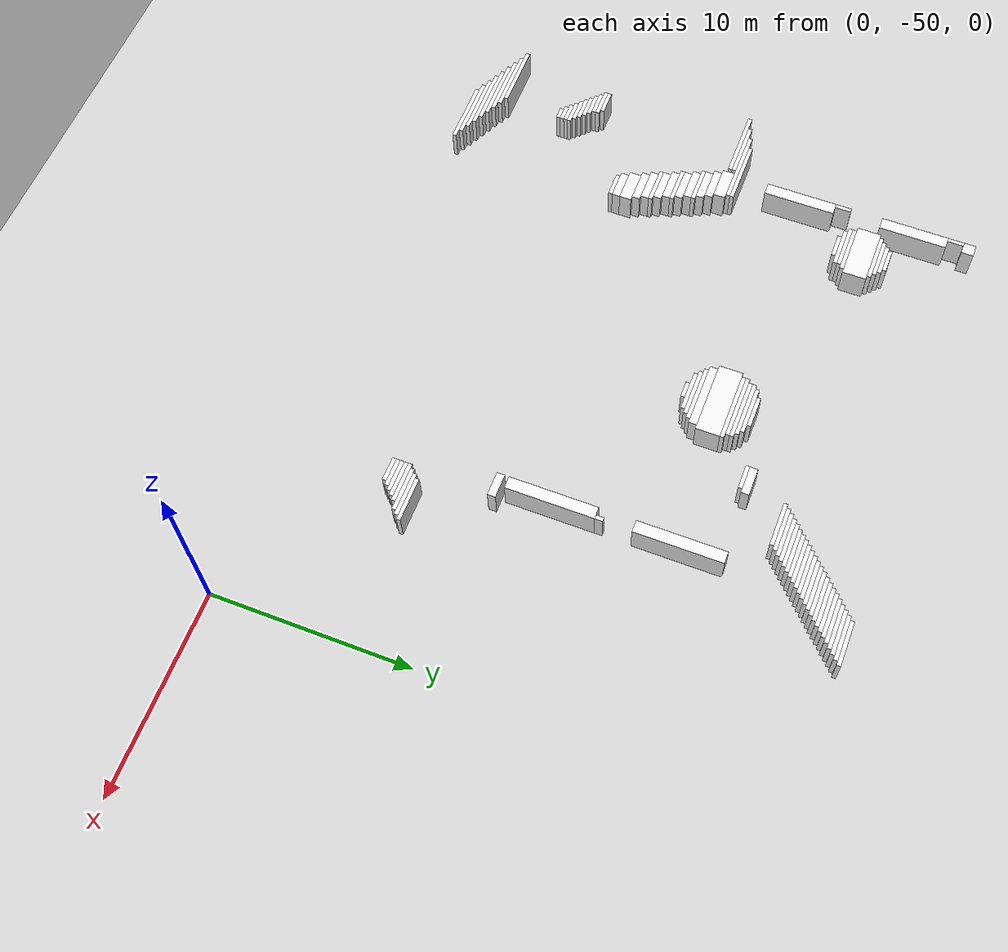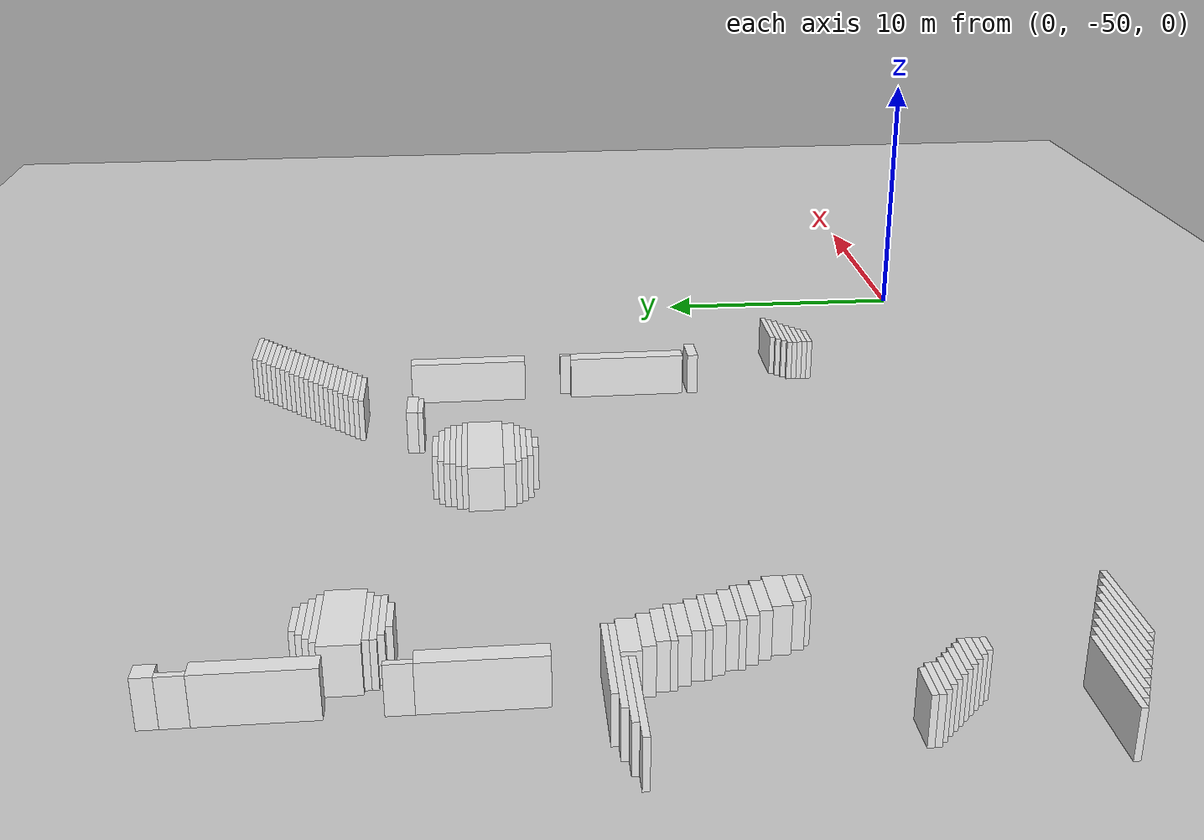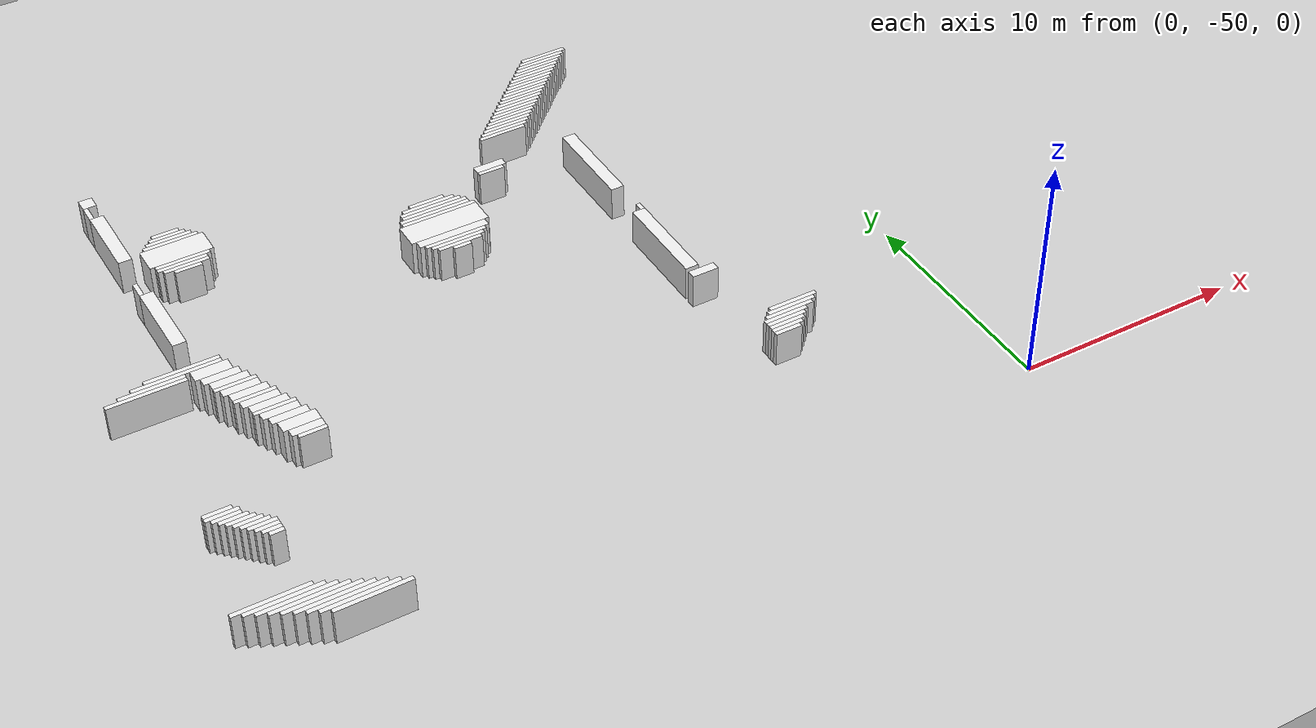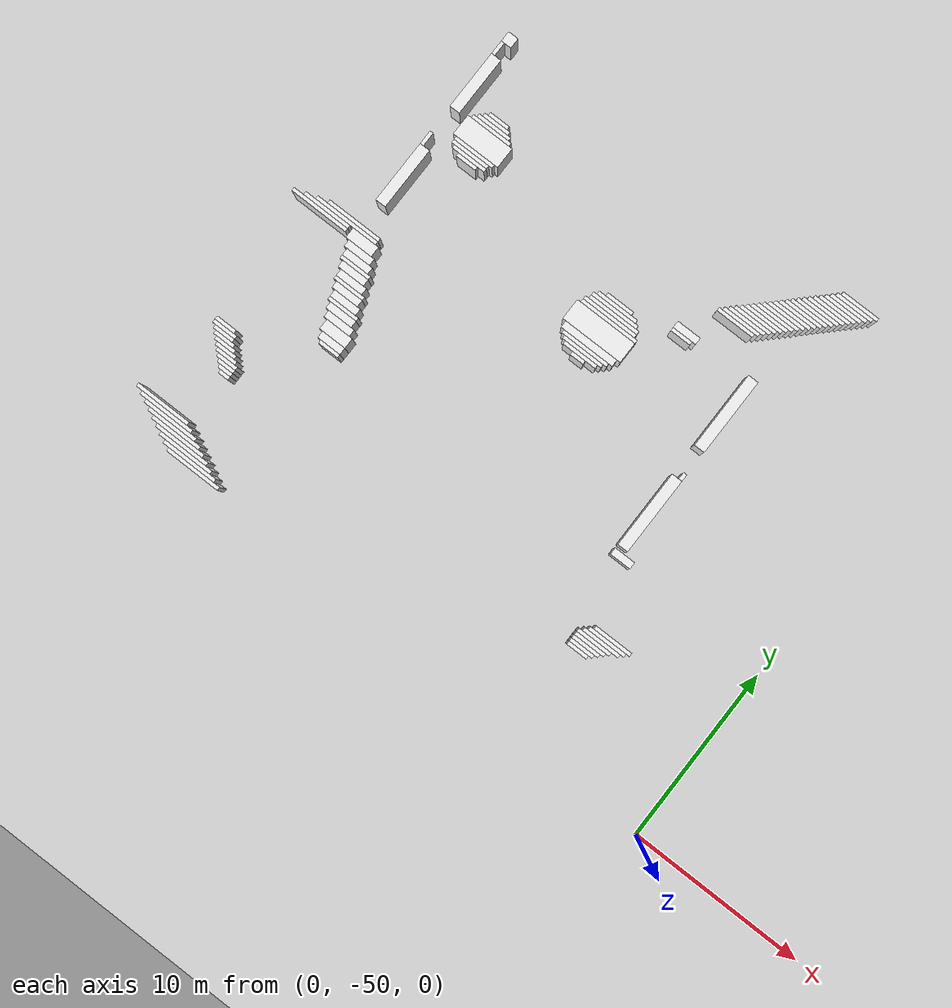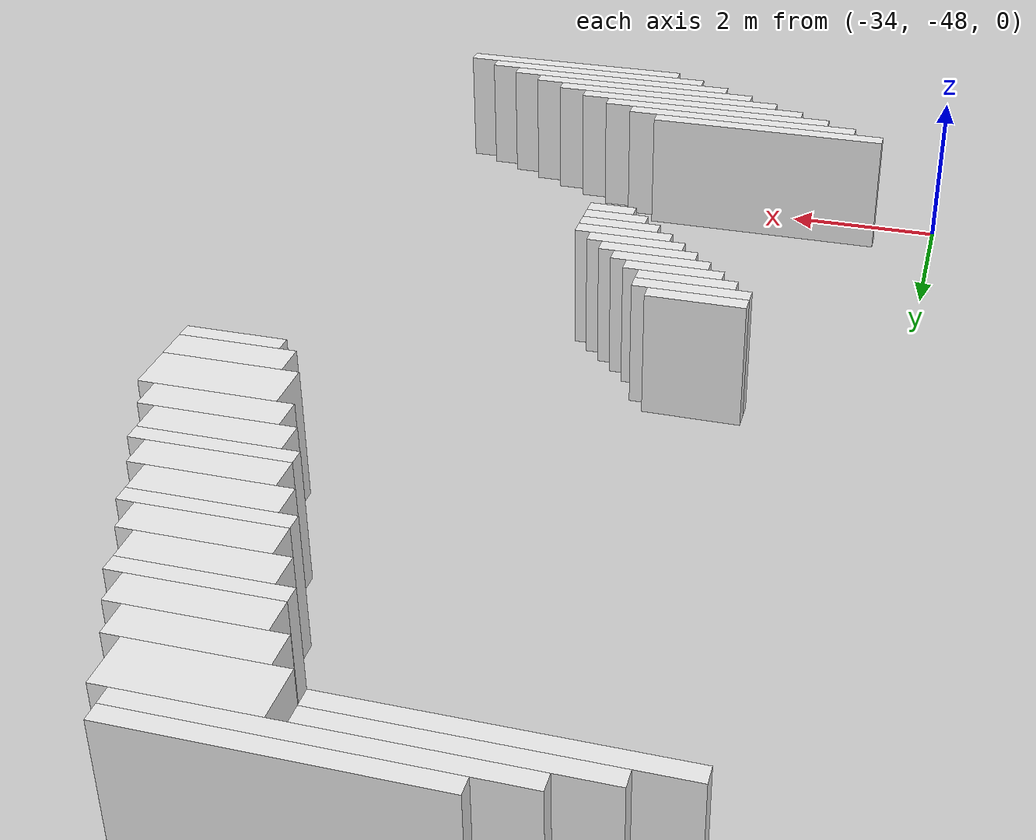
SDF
<sdf version="1.7">
 <world name="default">
  <model name="ground_plane">
   <static>1</static>
   <link name="link">
    <collision name="collision">
     <geometry><plane><normal>0 0 1</normal><size>120 120</size></plane></geometry>
    </collision>
    <visual name="visual">
     <geometry><plane><normal>0 0 1</normal><size>120 120</size></plane></geometry>
     <material>
      <script><uri>file://media/materials/scripts/gazebo.material</uri><name>Gazebo/Grey</name></script>
     </material>
    </visual>
   </link>
  </model>
  <model name="random_complex_03_model">
   <static>1</static>
   <link name="obs_2393">
    <pose>-7.3000 -22.5000 0.8000 0 0 0</pose>
    <collision name="obs_2393_col"><geometry><box><size>2.2000 0.2000 1.6000</size></box></geometry></collision>
    <visual name="obs_2393_vis">
     <geometry><box><size>2.2000 0.2000 1.6000</size></box></geometry>
     <material>
      <script><uri>file://media/materials/scripts/gazebo.material</uri><name>Gazebo/White</name></script>
     </material>
    </visual>
   </link>
   <link name="obs_2396">
    <pose>-29.3000 -22.5000 0.8000 0 0 0</pose>
    <collision name="obs_2396_col"><geometry><box><size>0.6000 0.6000 1.6000</size></box></geometry></collision>
    <visual name="obs_2396_vis">
     <geometry><box><size>0.6000 0.6000 1.6000</size></box></geometry>
     <material>
      <script><uri>file://media/materials/scripts/gazebo.material</uri><name>Gazebo/White</name></script>
     </material>
    </visual>
   </link>
   <link name="obs_2399">
    <pose>-7.5000 -22.7000 0.8000 0 0 0</pose>
    <collision name="obs_2399_col"><geometry><box><size>2.2000 0.2000 1.6000</size></box></geometry></collision>
    <visual name="obs_2399_vis">
     <geometry><box><size>2.2000 0.2000 1.6000</size></box></geometry>
     <material>
      <script><uri>file://media/materials/scripts/gazebo.material</uri><name>Gazebo/White</name></script>
     </material>
    </visual>
   </link>
   <link name="obs_2402">
    <pose>-7.7000 -22.9000 0.8000 0 0 0</pose>
    <collision name="obs_2402_col"><geometry><box><size>2.2000 0.2000 1.6000</size></box></geometry></collision>
    <visual name="obs_2402_vis">
     <geometry><box><size>2.2000 0.2000 1.6000</size></box></geometry>
     <material>
      <script><uri>file://media/materials/scripts/gazebo.material</uri><name>Gazebo/White</name></script>
     </material>
    </visual>
   </link>
   <link name="obs_2408">
    <pose>-7.9000 -23.1000 0.8000 0 0 0</pose>
    <collision name="obs_2408_col"><geometry><box><size>2.2000 0.2000 1.6000</size></box></geometry></collision>
    <visual name="obs_2408_vis">
     <geometry><box><size>2.2000 0.2000 1.6000</size></box></geometry>
     <material>
      <script><uri>file://media/materials/scripts/gazebo.material</uri><name>Gazebo/White</name></script>
     </material>
    </visual>
   </link>
   <link name="obs_2413">
    <pose>-8.1000 -23.3000 0.8000 0 0 0</pose>
    <collision name="obs_2413_col"><geometry><box><size>2.2000 0.2000 1.6000</size></box></geometry></collision>
    <visual name="obs_2413_vis">
     <geometry><box><size>2.2000 0.2000 1.6000</size></box></geometry>
     <material>
      <script><uri>file://media/materials/scripts/gazebo.material</uri><name>Gazebo/White</name></script>
     </material>
    </visual>
   </link>
   <link name="obs_2416">
    <pose>-29.5000 -23.2000 0.8000 0 0 0</pose>
    <collision name="obs_2416_col"><geometry><box><size>0.2000 0.8000 1.6000</size></box></geometry></collision>
    <visual name="obs_2416_vis">
     <geometry><box><size>0.2000 0.8000 1.6000</size></box></geometry>
     <material>
      <script><uri>file://media/materials/scripts/gazebo.material</uri><name>Gazebo/White</name></script>
     </material>
    </visual>
   </link>
   <link name="obs_2422">
    <pose>-8.3000 -23.5000 0.8000 0 0 0</pose>
    <collision name="obs_2422_col"><geometry><box><size>2.2000 0.2000 1.6000</size></box></geometry></collision>
    <visual name="obs_2422_vis">
     <geometry><box><size>2.2000 0.2000 1.6000</size></box></geometry>
     <material>
      <script><uri>file://media/materials/scripts/gazebo.material</uri><name>Gazebo/White</name></script>
     </material>
    </visual>
   </link>
   <link name="obs_2427">
    <pose>-8.5000 -23.7000 0.8000 0 0 0</pose>
    <collision name="obs_2427_col"><geometry><box><size>2.2000 0.2000 1.6000</size></box></geometry></collision>
    <visual name="obs_2427_vis">
     <geometry><box><size>2.2000 0.2000 1.6000</size></box></geometry>
     <material>
      <script><uri>file://media/materials/scripts/gazebo.material</uri><name>Gazebo/White</name></script>
     </material>
    </visual>
   </link>
   <link name="obs_2435">
    <pose>-8.7000 -23.9000 0.8000 0 0 0</pose>
    <collision name="obs_2435_col"><geometry><box><size>2.2000 0.2000 1.6000</size></box></geometry></collision>
    <visual name="obs_2435_vis">
     <geometry><box><size>2.2000 0.2000 1.6000</size></box></geometry>
     <material>
      <script><uri>file://media/materials/scripts/gazebo.material</uri><name>Gazebo/White</name></script>
     </material>
    </visual>
   </link>
   <link name="obs_2443">
    <pose>-8.9000 -24.1000 0.8000 0 0 0</pose>
    <collision name="obs_2443_col"><geometry><box><size>2.2000 0.2000 1.6000</size></box></geometry></collision>
    <visual name="obs_2443_vis">
     <geometry><box><size>2.2000 0.2000 1.6000</size></box></geometry>
     <material>
      <script><uri>file://media/materials/scripts/gazebo.material</uri><name>Gazebo/White</name></script>
     </material>
    </visual>
   </link>
   <link name="obs_2449">
    <pose>-9.1000 -24.3000 0.8000 0 0 0</pose>
    <collision name="obs_2449_col"><geometry><box><size>2.2000 0.2000 1.6000</size></box></geometry></collision>
    <visual name="obs_2449_vis">
     <geometry><box><size>2.2000 0.2000 1.6000</size></box></geometry>
     <material>
      <script><uri>file://media/materials/scripts/gazebo.material</uri><name>Gazebo/White</name></script>
     </material>
    </visual>
   </link>
   <link name="obs_2458">
    <pose>-9.3000 -24.5000 0.8000 0 0 0</pose>
    <collision name="obs_2458_col"><geometry><box><size>2.2000 0.2000 1.6000</size></box></geometry></collision>
    <visual name="obs_2458_vis">
     <geometry><box><size>2.2000 0.2000 1.6000</size></box></geometry>
     <material>
      <script><uri>file://media/materials/scripts/gazebo.material</uri><name>Gazebo/White</name></script>
     </material>
    </visual>
   </link>
   <link name="obs_2465">
    <pose>-9.5000 -24.7000 0.8000 0 0 0</pose>
    <collision name="obs_2465_col"><geometry><box><size>2.2000 0.2000 1.6000</size></box></geometry></collision>
    <visual name="obs_2465_vis">
     <geometry><box><size>2.2000 0.2000 1.6000</size></box></geometry>
     <material>
      <script><uri>file://media/materials/scripts/gazebo.material</uri><name>Gazebo/White</name></script>
     </material>
    </visual>
   </link>
   <link name="obs_2470">
    <pose>-9.7000 -24.9000 0.8000 0 0 0</pose>
    <collision name="obs_2470_col"><geometry><box><size>2.2000 0.2000 1.6000</size></box></geometry></collision>
    <visual name="obs_2470_vis">
     <geometry><box><size>2.2000 0.2000 1.6000</size></box></geometry>
     <material>
      <script><uri>file://media/materials/scripts/gazebo.material</uri><name>Gazebo/White</name></script>
     </material>
    </visual>
   </link>
   <link name="obs_2477">
    <pose>-9.9000 -25.1000 0.8000 0 0 0</pose>
    <collision name="obs_2477_col"><geometry><box><size>2.2000 0.2000 1.6000</size></box></geometry></collision>
    <visual name="obs_2477_vis">
     <geometry><box><size>2.2000 0.2000 1.6000</size></box></geometry>
     <material>
      <script><uri>file://media/materials/scripts/gazebo.material</uri><name>Gazebo/White</name></script>
     </material>
    </visual>
   </link>
   <link name="obs_2483">
    <pose>-10.1000 -25.3000 0.8000 0 0 0</pose>
    <collision name="obs_2483_col"><geometry><box><size>2.2000 0.2000 1.6000</size></box></geometry></collision>
    <visual name="obs_2483_vis">
     <geometry><box><size>2.2000 0.2000 1.6000</size></box></geometry>
     <material>
      <script><uri>file://media/materials/scripts/gazebo.material</uri><name>Gazebo/White</name></script>
     </material>
    </visual>
   </link>
   <link name="obs_2490">
    <pose>-10.3000 -25.5000 0.8000 0 0 0</pose>
    <collision name="obs_2490_col"><geometry><box><size>2.2000 0.2000 1.6000</size></box></geometry></collision>
    <visual name="obs_2490_vis">
     <geometry><box><size>2.2000 0.2000 1.6000</size></box></geometry>
     <material>
      <script><uri>file://media/materials/scripts/gazebo.material</uri><name>Gazebo/White</name></script>
     </material>
    </visual>
   </link>
   <link name="obs_2496">
    <pose>-10.5000 -25.7000 0.8000 0 0 0</pose>
    <collision name="obs_2496_col"><geometry><box><size>2.2000 0.2000 1.6000</size></box></geometry></collision>
    <visual name="obs_2496_vis">
     <geometry><box><size>2.2000 0.2000 1.6000</size></box></geometry>
     <material>
      <script><uri>file://media/materials/scripts/gazebo.material</uri><name>Gazebo/White</name></script>
     </material>
    </visual>
   </link>
   <link name="obs_2504">
    <pose>-10.7000 -25.9000 0.8000 0 0 0</pose>
    <collision name="obs_2504_col"><geometry><box><size>2.2000 0.2000 1.6000</size></box></geometry></collision>
    <visual name="obs_2504_vis">
     <geometry><box><size>2.2000 0.2000 1.6000</size></box></geometry>
     <material>
      <script><uri>file://media/materials/scripts/gazebo.material</uri><name>Gazebo/White</name></script>
     </material>
    </visual>
   </link>
   <link name="obs_2511">
    <pose>-27.2000 -26.1000 0.8000 0 0 0</pose>
    <collision name="obs_2511_col"><geometry><box><size>1.2000 0.2000 1.6000</size></box></geometry></collision>
    <visual name="obs_2511_vis">
     <geometry><box><size>1.2000 0.2000 1.6000</size></box></geometry>
     <material>
      <script><uri>file://media/materials/scripts/gazebo.material</uri><name>Gazebo/White</name></script>
     </material>
    </visual>
   </link>
   <link name="obs_2512">
    <pose>-10.9000 -26.1000 0.8000 0 0 0</pose>
    <collision name="obs_2512_col"><geometry><box><size>2.2000 0.2000 1.6000</size></box></geometry></collision>
    <visual name="obs_2512_vis">
     <geometry><box><size>2.2000 0.2000 1.6000</size></box></geometry>
     <material>
      <script><uri>file://media/materials/scripts/gazebo.material</uri><name>Gazebo/White</name></script>
     </material>
    </visual>
   </link>
   <link name="obs_2520">
    <pose>-27.2000 -26.3000 0.8000 0 0 0</pose>
    <collision name="obs_2520_col"><geometry><box><size>1.6000 0.2000 1.6000</size></box></geometry></collision>
    <visual name="obs_2520_vis">
     <geometry><box><size>1.6000 0.2000 1.6000</size></box></geometry>
     <material>
      <script><uri>file://media/materials/scripts/gazebo.material</uri><name>Gazebo/White</name></script>
     </material>
    </visual>
   </link>
   <link name="obs_2521">
    <pose>-11.1000 -26.3000 0.8000 0 0 0</pose>
    <collision name="obs_2521_col"><geometry><box><size>2.2000 0.2000 1.6000</size></box></geometry></collision>
    <visual name="obs_2521_vis">
     <geometry><box><size>2.2000 0.2000 1.6000</size></box></geometry>
     <material>
      <script><uri>file://media/materials/scripts/gazebo.material</uri><name>Gazebo/White</name></script>
     </material>
    </visual>
   </link>
   <link name="obs_2525">
    <pose>-27.2000 -26.5000 0.8000 0 0 0</pose>
    <collision name="obs_2525_col"><geometry><box><size>2.0000 0.2000 1.6000</size></box></geometry></collision>
    <visual name="obs_2525_vis">
     <geometry><box><size>2.0000 0.2000 1.6000</size></box></geometry>
     <material>
      <script><uri>file://media/materials/scripts/gazebo.material</uri><name>Gazebo/White</name></script>
     </material>
    </visual>
   </link>
   <link name="obs_2526">
    <pose>-11.3000 -26.5000 0.8000 0 0 0</pose>
    <collision name="obs_2526_col"><geometry><box><size>2.2000 0.2000 1.6000</size></box></geometry></collision>
    <visual name="obs_2526_vis">
     <geometry><box><size>2.2000 0.2000 1.6000</size></box></geometry>
     <material>
      <script><uri>file://media/materials/scripts/gazebo.material</uri><name>Gazebo/White</name></script>
     </material>
    </visual>
   </link>
   <link name="obs_2533">
    <pose>-27.2000 -26.7000 0.8000 0 0 0</pose>
    <collision name="obs_2533_col"><geometry><box><size>2.4000 0.2000 1.6000</size></box></geometry></collision>
    <visual name="obs_2533_vis">
     <geometry><box><size>2.4000 0.2000 1.6000</size></box></geometry>
     <material>
      <script><uri>file://media/materials/scripts/gazebo.material</uri><name>Gazebo/White</name></script>
     </material>
    </visual>
   </link>
   <link name="obs_2534">
    <pose>-11.5000 -26.7000 0.8000 0 0 0</pose>
    <collision name="obs_2534_col"><geometry><box><size>2.2000 0.2000 1.6000</size></box></geometry></collision>
    <visual name="obs_2534_vis">
     <geometry><box><size>2.2000 0.2000 1.6000</size></box></geometry>
     <material>
      <script><uri>file://media/materials/scripts/gazebo.material</uri><name>Gazebo/White</name></script>
     </material>
    </visual>
   </link>
   <link name="obs_2538">
    <pose>-29.3000 -25.3000 0.8000 0 0 0</pose>
    <collision name="obs_2538_col"><geometry><box><size>0.6000 3.4000 1.6000</size></box></geometry></collision>
    <visual name="obs_2538_vis">
     <geometry><box><size>0.6000 3.4000 1.6000</size></box></geometry>
     <material>
      <script><uri>file://media/materials/scripts/gazebo.material</uri><name>Gazebo/White</name></script>
     </material>
    </visual>
   </link>
   <link name="obs_2540">
    <pose>-11.7000 -26.9000 0.8000 0 0 0</pose>
    <collision name="obs_2540_col"><geometry><box><size>2.2000 0.2000 1.6000</size></box></geometry></collision>
    <visual name="obs_2540_vis">
     <geometry><box><size>2.2000 0.2000 1.6000</size></box></geometry>
     <material>
      <script><uri>file://media/materials/scripts/gazebo.material</uri><name>Gazebo/White</name></script>
     </material>
    </visual>
   </link>
   <link name="obs_2554">
    <pose>-27.2000 -27.4000 0.8000 0 0 0</pose>
    <collision name="obs_2554_col"><geometry><box><size>2.8000 1.2000 1.6000</size></box></geometry></collision>
    <visual name="obs_2554_vis">
     <geometry><box><size>2.8000 1.2000 1.6000</size></box></geometry>
     <material>
      <script><uri>file://media/materials/scripts/gazebo.material</uri><name>Gazebo/White</name></script>
     </material>
    </visual>
   </link>
   <link name="obs_2557">
    <pose>-27.2000 -28.1000 0.8000 0 0 0</pose>
    <collision name="obs_2557_col"><geometry><box><size>2.4000 0.2000 1.6000</size></box></geometry></collision>
    <visual name="obs_2557_vis">
     <geometry><box><size>2.4000 0.2000 1.6000</size></box></geometry>
     <material>
      <script><uri>file://media/materials/scripts/gazebo.material</uri><name>Gazebo/White</name></script>
     </material>
    </visual>
   </link>
   <link name="obs_2560">
    <pose>-27.3000 -28.3000 0.8000 0 0 0</pose>
    <collision name="obs_2560_col"><geometry><box><size>2.2000 0.2000 1.6000</size></box></geometry></collision>
    <visual name="obs_2560_vis">
     <geometry><box><size>2.2000 0.2000 1.6000</size></box></geometry>
     <material>
      <script><uri>file://media/materials/scripts/gazebo.material</uri><name>Gazebo/White</name></script>
     </material>
    </visual>
   </link>
   <link name="obs_2562">
    <pose>-27.2000 -28.5000 0.8000 0 0 0</pose>
    <collision name="obs_2562_col"><geometry><box><size>2.0000 0.2000 1.6000</size></box></geometry></collision>
    <visual name="obs_2562_vis">
     <geometry><box><size>2.0000 0.2000 1.6000</size></box></geometry>
     <material>
      <script><uri>file://media/materials/scripts/gazebo.material</uri><name>Gazebo/White</name></script>
     </material>
    </visual>
   </link>
   <link name="obs_2565">
    <pose>-27.2000 -28.7000 0.8000 0 0 0</pose>
    <collision name="obs_2565_col"><geometry><box><size>1.2000 0.2000 1.6000</size></box></geometry></collision>
    <visual name="obs_2565_vis">
     <geometry><box><size>1.2000 0.2000 1.6000</size></box></geometry>
     <material>
      <script><uri>file://media/materials/scripts/gazebo.material</uri><name>Gazebo/White</name></script>
     </material>
    </visual>
   </link>
   <link name="obs_2567">
    <pose>-13.3000 -28.8000 0.8000 0 0 0</pose>
    <collision name="obs_2567_col"><geometry><box><size>1.4000 0.4000 1.6000</size></box></geometry></collision>
    <visual name="obs_2567_vis">
     <geometry><box><size>1.4000 0.4000 1.6000</size></box></geometry>
     <material>
      <script><uri>file://media/materials/scripts/gazebo.material</uri><name>Gazebo/White</name></script>
     </material>
    </visual>
   </link>
   <link name="obs_2576">
    <pose>-13.4000 -29.1000 0.8000 0 0 0</pose>
    <collision name="obs_2576_col"><geometry><box><size>1.2000 0.2000 1.6000</size></box></geometry></collision>
    <visual name="obs_2576_vis">
     <geometry><box><size>1.2000 0.2000 1.6000</size></box></geometry>
     <material>
      <script><uri>file://media/materials/scripts/gazebo.material</uri><name>Gazebo/White</name></script>
     </material>
    </visual>
   </link>
   <link name="obs_2577">
    <pose>-29.5000 -29.0000 0.8000 0 0 0</pose>
    <collision name="obs_2577_col"><geometry><box><size>0.2000 0.8000 1.6000</size></box></geometry></collision>
    <visual name="obs_2577_vis">
     <geometry><box><size>0.2000 0.8000 1.6000</size></box></geometry>
     <material>
      <script><uri>file://media/materials/scripts/gazebo.material</uri><name>Gazebo/White</name></script>
     </material>
    </visual>
   </link>
   <link name="obs_2589">
    <pose>-16.8000 -29.7000 0.8000 0 0 0</pose>
    <collision name="obs_2589_col"><geometry><box><size>1.6000 0.2000 1.6000</size></box></geometry></collision>
    <visual name="obs_2589_vis">
     <geometry><box><size>1.6000 0.2000 1.6000</size></box></geometry>
     <material>
      <script><uri>file://media/materials/scripts/gazebo.material</uri><name>Gazebo/White</name></script>
     </material>
    </visual>
   </link>
   <link name="obs_2595">
    <pose>-16.8000 -29.9000 0.8000 0 0 0</pose>
    <collision name="obs_2595_col"><geometry><box><size>2.4000 0.2000 1.6000</size></box></geometry></collision>
    <visual name="obs_2595_vis">
     <geometry><box><size>2.4000 0.2000 1.6000</size></box></geometry>
     <material>
      <script><uri>file://media/materials/scripts/gazebo.material</uri><name>Gazebo/White</name></script>
     </material>
    </visual>
   </link>
   <link name="obs_2600">
    <pose>-16.8000 -30.1000 0.8000 0 0 0</pose>
    <collision name="obs_2600_col"><geometry><box><size>2.8000 0.2000 1.6000</size></box></geometry></collision>
    <visual name="obs_2600_vis">
     <geometry><box><size>2.8000 0.2000 1.6000</size></box></geometry>
     <material>
      <script><uri>file://media/materials/scripts/gazebo.material</uri><name>Gazebo/White</name></script>
     </material>
    </visual>
   </link>
   <link name="obs_2607">
    <pose>-16.7000 -30.3000 0.8000 0 0 0</pose>
    <collision name="obs_2607_col"><geometry><box><size>3.0000 0.2000 1.6000</size></box></geometry></collision>
    <visual name="obs_2607_vis">
     <geometry><box><size>3.0000 0.2000 1.6000</size></box></geometry>
     <material>
      <script><uri>file://media/materials/scripts/gazebo.material</uri><name>Gazebo/White</name></script>
     </material>
    </visual>
   </link>
   <link name="obs_2612">
    <pose>-16.8000 -30.5000 0.8000 0 0 0</pose>
    <collision name="obs_2612_col"><geometry><box><size>3.2000 0.2000 1.6000</size></box></geometry></collision>
    <visual name="obs_2612_vis">
     <geometry><box><size>3.2000 0.2000 1.6000</size></box></geometry>
     <material>
      <script><uri>file://media/materials/scripts/gazebo.material</uri><name>Gazebo/White</name></script>
     </material>
    </visual>
   </link>
   <link name="obs_2617">
    <pose>-16.7000 -30.7000 0.8000 0 0 0</pose>
    <collision name="obs_2617_col"><geometry><box><size>3.4000 0.2000 1.6000</size></box></geometry></collision>
    <visual name="obs_2617_vis">
     <geometry><box><size>3.4000 0.2000 1.6000</size></box></geometry>
     <material>
      <script><uri>file://media/materials/scripts/gazebo.material</uri><name>Gazebo/White</name></script>
     </material>
    </visual>
   </link>
   <link name="obs_2651">
    <pose>-16.8000 -31.4000 0.8000 0 0 0</pose>
    <collision name="obs_2651_col"><geometry><box><size>3.6000 1.2000 1.6000</size></box></geometry></collision>
    <visual name="obs_2651_vis">
     <geometry><box><size>3.6000 1.2000 1.6000</size></box></geometry>
     <material>
      <script><uri>file://media/materials/scripts/gazebo.material</uri><name>Gazebo/White</name></script>
     </material>
    </visual>
   </link>
   <link name="obs_2666">
    <pose>-16.8000 -32.2000 0.8000 0 0 0</pose>
    <collision name="obs_2666_col"><geometry><box><size>3.2000 0.4000 1.6000</size></box></geometry></collision>
    <visual name="obs_2666_vis">
     <geometry><box><size>3.2000 0.4000 1.6000</size></box></geometry>
     <material>
      <script><uri>file://media/materials/scripts/gazebo.material</uri><name>Gazebo/White</name></script>
     </material>
    </visual>
   </link>
   <link name="obs_2677">
    <pose>-16.8000 -32.5000 0.8000 0 0 0</pose>
    <collision name="obs_2677_col"><geometry><box><size>2.8000 0.2000 1.6000</size></box></geometry></collision>
    <visual name="obs_2677_vis">
     <geometry><box><size>2.8000 0.2000 1.6000</size></box></geometry>
     <material>
      <script><uri>file://media/materials/scripts/gazebo.material</uri><name>Gazebo/White</name></script>
     </material>
    </visual>
   </link>
   <link name="obs_2684">
    <pose>-16.8000 -32.7000 0.8000 0 0 0</pose>
    <collision name="obs_2684_col"><geometry><box><size>2.4000 0.2000 1.6000</size></box></geometry></collision>
    <visual name="obs_2684_vis">
     <geometry><box><size>2.4000 0.2000 1.6000</size></box></geometry>
     <material>
      <script><uri>file://media/materials/scripts/gazebo.material</uri><name>Gazebo/White</name></script>
     </material>
    </visual>
   </link>
   <link name="obs_2689">
    <pose>-9.3000 -30.8000 0.8000 0 0 0</pose>
    <collision name="obs_2689_col"><geometry><box><size>0.6000 4.4000 1.6000</size></box></geometry></collision>
    <visual name="obs_2689_vis">
     <geometry><box><size>0.6000 4.4000 1.6000</size></box></geometry>
     <material>
      <script><uri>file://media/materials/scripts/gazebo.material</uri><name>Gazebo/White</name></script>
     </material>
    </visual>
   </link>
   <link name="obs_2690">
    <pose>-29.3000 -31.2000 0.8000 0 0 0</pose>
    <collision name="obs_2690_col"><geometry><box><size>0.6000 3.6000 1.6000</size></box></geometry></collision>
    <visual name="obs_2690_vis">
     <geometry><box><size>0.6000 3.6000 1.6000</size></box></geometry>
     <material>
      <script><uri>file://media/materials/scripts/gazebo.material</uri><name>Gazebo/White</name></script>
     </material>
    </visual>
   </link>
   <link name="obs_2693">
    <pose>-16.8000 -32.9000 0.8000 0 0 0</pose>
    <collision name="obs_2693_col"><geometry><box><size>2.0000 0.2000 1.6000</size></box></geometry></collision>
    <visual name="obs_2693_vis">
     <geometry><box><size>2.0000 0.2000 1.6000</size></box></geometry>
     <material>
      <script><uri>file://media/materials/scripts/gazebo.material</uri><name>Gazebo/White</name></script>
     </material>
    </visual>
   </link>
   <link name="obs_2701">
    <pose>-16.8000 -33.1000 0.8000 0 0 0</pose>
    <collision name="obs_2701_col"><geometry><box><size>0.8000 0.2000 1.6000</size></box></geometry></collision>
    <visual name="obs_2701_vis">
     <geometry><box><size>0.8000 0.2000 1.6000</size></box></geometry>
     <material>
      <script><uri>file://media/materials/scripts/gazebo.material</uri><name>Gazebo/White</name></script>
     </material>
    </visual>
   </link>
   <link name="obs_2749">
    <pose>-29.8000 -34.5000 0.8000 0 0 0</pose>
    <collision name="obs_2749_col"><geometry><box><size>3.2000 0.2000 1.6000</size></box></geometry></collision>
    <visual name="obs_2749_vis">
     <geometry><box><size>3.2000 0.2000 1.6000</size></box></geometry>
     <material>
      <script><uri>file://media/materials/scripts/gazebo.material</uri><name>Gazebo/White</name></script>
     </material>
    </visual>
   </link>
   <link name="obs_2755">
    <pose>-9.1000 -34.6000 0.8000 0 0 0</pose>
    <collision name="obs_2755_col"><geometry><box><size>0.2000 0.4000 1.6000</size></box></geometry></collision>
    <visual name="obs_2755_vis">
     <geometry><box><size>0.2000 0.4000 1.6000</size></box></geometry>
     <material>
      <script><uri>file://media/materials/scripts/gazebo.material</uri><name>Gazebo/White</name></script>
     </material>
    </visual>
   </link>
   <link name="obs_2758">
    <pose>-30.1000 -34.7000 0.8000 0 0 0</pose>
    <collision name="obs_2758_col"><geometry><box><size>3.8000 0.2000 1.6000</size></box></geometry></collision>
    <visual name="obs_2758_vis">
     <geometry><box><size>3.8000 0.2000 1.6000</size></box></geometry>
     <material>
      <script><uri>file://media/materials/scripts/gazebo.material</uri><name>Gazebo/White</name></script>
     </material>
    </visual>
   </link>
   <link name="obs_2766">
    <pose>-31.2000 -34.9000 0.8000 0 0 0</pose>
    <collision name="obs_2766_col"><geometry><box><size>2.8000 0.2000 1.6000</size></box></geometry></collision>
    <visual name="obs_2766_vis">
     <geometry><box><size>2.8000 0.2000 1.6000</size></box></geometry>
     <material>
      <script><uri>file://media/materials/scripts/gazebo.material</uri><name>Gazebo/White</name></script>
     </material>
    </visual>
   </link>
   <link name="obs_2773">
    <pose>-31.5000 -35.1000 0.8000 0 0 0</pose>
    <collision name="obs_2773_col"><geometry><box><size>3.4000 0.2000 1.6000</size></box></geometry></collision>
    <visual name="obs_2773_vis">
     <geometry><box><size>3.4000 0.2000 1.6000</size></box></geometry>
     <material>
      <script><uri>file://media/materials/scripts/gazebo.material</uri><name>Gazebo/White</name></script>
     </material>
    </visual>
   </link>
   <link name="obs_2778">
    <pose>-28.8000 -35.1000 0.8000 0 0 0</pose>
    <collision name="obs_2778_col"><geometry><box><size>1.6000 0.6000 1.6000</size></box></geometry></collision>
    <visual name="obs_2778_vis">
     <geometry><box><size>1.6000 0.6000 1.6000</size></box></geometry>
     <material>
      <script><uri>file://media/materials/scripts/gazebo.material</uri><name>Gazebo/White</name></script>
     </material>
    </visual>
   </link>
   <link name="obs_2793">
    <pose>-28.6000 -35.6000 0.8000 0 0 0</pose>
    <collision name="obs_2793_col"><geometry><box><size>1.6000 0.4000 1.6000</size></box></geometry></collision>
    <visual name="obs_2793_vis">
     <geometry><box><size>1.6000 0.4000 1.6000</size></box></geometry>
     <material>
      <script><uri>file://media/materials/scripts/gazebo.material</uri><name>Gazebo/White</name></script>
     </material>
    </visual>
   </link>
   <link name="obs_2808">
    <pose>-28.4000 -36.0000 0.8000 0 0 0</pose>
    <collision name="obs_2808_col"><geometry><box><size>1.6000 0.4000 1.6000</size></box></geometry></collision>
    <visual name="obs_2808_vis">
     <geometry><box><size>1.6000 0.4000 1.6000</size></box></geometry>
     <material>
      <script><uri>file://media/materials/scripts/gazebo.material</uri><name>Gazebo/White</name></script>
     </material>
    </visual>
   </link>
   <link name="obs_2821">
    <pose>-28.3000 -36.3000 0.8000 0 0 0</pose>
    <collision name="obs_2821_col"><geometry><box><size>1.8000 0.2000 1.6000</size></box></geometry></collision>
    <visual name="obs_2821_vis">
     <geometry><box><size>1.8000 0.2000 1.6000</size></box></geometry>
     <material>
      <script><uri>file://media/materials/scripts/gazebo.material</uri><name>Gazebo/White</name></script>
     </material>
    </visual>
   </link>
   <link name="obs_2830">
    <pose>-28.2000 -36.6000 0.8000 0 0 0</pose>
    <collision name="obs_2830_col"><geometry><box><size>1.6000 0.4000 1.6000</size></box></geometry></collision>
    <visual name="obs_2830_vis">
     <geometry><box><size>1.6000 0.4000 1.6000</size></box></geometry>
     <material>
      <script><uri>file://media/materials/scripts/gazebo.material</uri><name>Gazebo/White</name></script>
     </material>
    </visual>
   </link>
   <link name="obs_2842">
    <pose>-28.0000 -37.0000 0.8000 0 0 0</pose>
    <collision name="obs_2842_col"><geometry><box><size>1.6000 0.4000 1.6000</size></box></geometry></collision>
    <visual name="obs_2842_vis">
     <geometry><box><size>1.6000 0.4000 1.6000</size></box></geometry>
     <material>
      <script><uri>file://media/materials/scripts/gazebo.material</uri><name>Gazebo/White</name></script>
     </material>
    </visual>
   </link>
   <link name="obs_2851">
    <pose>-27.9000 -37.3000 0.8000 0 0 0</pose>
    <collision name="obs_2851_col"><geometry><box><size>1.8000 0.2000 1.6000</size></box></geometry></collision>
    <visual name="obs_2851_vis">
     <geometry><box><size>1.8000 0.2000 1.6000</size></box></geometry>
     <material>
      <script><uri>file://media/materials/scripts/gazebo.material</uri><name>Gazebo/White</name></script>
     </material>
    </visual>
   </link>
   <link name="obs_2860">
    <pose>-27.8000 -37.6000 0.8000 0 0 0</pose>
    <collision name="obs_2860_col"><geometry><box><size>1.6000 0.4000 1.6000</size></box></geometry></collision>
    <visual name="obs_2860_vis">
     <geometry><box><size>1.6000 0.4000 1.6000</size></box></geometry>
     <material>
      <script><uri>file://media/materials/scripts/gazebo.material</uri><name>Gazebo/White</name></script>
     </material>
    </visual>
   </link>
   <link name="obs_2872">
    <pose>-27.6000 -38.0000 0.8000 0 0 0</pose>
    <collision name="obs_2872_col"><geometry><box><size>1.6000 0.4000 1.6000</size></box></geometry></collision>
    <visual name="obs_2872_vis">
     <geometry><box><size>1.6000 0.4000 1.6000</size></box></geometry>
     <material>
      <script><uri>file://media/materials/scripts/gazebo.material</uri><name>Gazebo/White</name></script>
     </material>
    </visual>
   </link>
   <link name="obs_2880">
    <pose>-27.5000 -38.3000 0.8000 0 0 0</pose>
    <collision name="obs_2880_col"><geometry><box><size>1.8000 0.2000 1.6000</size></box></geometry></collision>
    <visual name="obs_2880_vis">
     <geometry><box><size>1.8000 0.2000 1.6000</size></box></geometry>
     <material>
      <script><uri>file://media/materials/scripts/gazebo.material</uri><name>Gazebo/White</name></script>
     </material>
    </visual>
   </link>
   <link name="obs_2890">
    <pose>-27.4000 -38.6000 0.8000 0 0 0</pose>
    <collision name="obs_2890_col"><geometry><box><size>1.6000 0.4000 1.6000</size></box></geometry></collision>
    <visual name="obs_2890_vis">
     <geometry><box><size>1.6000 0.4000 1.6000</size></box></geometry>
     <material>
      <script><uri>file://media/materials/scripts/gazebo.material</uri><name>Gazebo/White</name></script>
     </material>
    </visual>
   </link>
   <link name="obs_2899">
    <pose>-9.3000 -37.0000 0.8000 0 0 0</pose>
    <collision name="obs_2899_col"><geometry><box><size>0.6000 4.4000 1.6000</size></box></geometry></collision>
    <visual name="obs_2899_vis">
     <geometry><box><size>0.6000 4.4000 1.6000</size></box></geometry>
     <material>
      <script><uri>file://media/materials/scripts/gazebo.material</uri><name>Gazebo/White</name></script>
     </material>
    </visual>
   </link>
   <link name="obs_2900">
    <pose>-27.2000 -39.0000 0.8000 0 0 0</pose>
    <collision name="obs_2900_col"><geometry><box><size>1.6000 0.4000 1.6000</size></box></geometry></collision>
    <visual name="obs_2900_vis">
     <geometry><box><size>1.6000 0.4000 1.6000</size></box></geometry>
     <material>
      <script><uri>file://media/materials/scripts/gazebo.material</uri><name>Gazebo/White</name></script>
     </material>
    </visual>
   </link>
   <link name="obs_2911">
    <pose>-27.0000 -39.5000 0.8000 0 0 0</pose>
    <collision name="obs_2911_col"><geometry><box><size>1.6000 0.6000 1.6000</size></box></geometry></collision>
    <visual name="obs_2911_vis">
     <geometry><box><size>1.6000 0.6000 1.6000</size></box></geometry>
     <material>
      <script><uri>file://media/materials/scripts/gazebo.material</uri><name>Gazebo/White</name></script>
     </material>
    </visual>
   </link>
   <link name="obs_2912">
    <pose>-9.0000 -39.6000 0.8000 0 0 0</pose>
    <collision name="obs_2912_col"><geometry><box><size>1.2000 0.4000 1.6000</size></box></geometry></collision>
    <visual name="obs_2912_vis">
     <geometry><box><size>1.2000 0.4000 1.6000</size></box></geometry>
     <material>
      <script><uri>file://media/materials/scripts/gazebo.material</uri><name>Gazebo/White</name></script>
     </material>
    </visual>
   </link>
   <link name="obs_2925">
    <pose>-26.9000 -40.0000 0.8000 0 0 0</pose>
    <collision name="obs_2925_col"><geometry><box><size>1.4000 0.4000 1.6000</size></box></geometry></collision>
    <visual name="obs_2925_vis">
     <geometry><box><size>1.4000 0.4000 1.6000</size></box></geometry>
     <material>
      <script><uri>file://media/materials/scripts/gazebo.material</uri><name>Gazebo/White</name></script>
     </material>
    </visual>
   </link>
   <link name="obs_2935">
    <pose>-26.8000 -40.3000 0.8000 0 0 0</pose>
    <collision name="obs_2935_col"><geometry><box><size>1.2000 0.2000 1.6000</size></box></geometry></collision>
    <visual name="obs_2935_vis">
     <geometry><box><size>1.2000 0.2000 1.6000</size></box></geometry>
     <material>
      <script><uri>file://media/materials/scripts/gazebo.material</uri><name>Gazebo/White</name></script>
     </material>
    </visual>
   </link>
   <link name="obs_2983">
    <pose>-31.6000 -42.5000 0.8000 0 0 0</pose>
    <collision name="obs_2983_col"><geometry><box><size>1.2000 0.2000 1.6000</size></box></geometry></collision>
    <visual name="obs_2983_vis">
     <geometry><box><size>1.2000 0.2000 1.6000</size></box></geometry>
     <material>
      <script><uri>file://media/materials/scripts/gazebo.material</uri><name>Gazebo/White</name></script>
     </material>
    </visual>
   </link>
   <link name="obs_2988">
    <pose>-31.5000 -42.7000 0.8000 0 0 0</pose>
    <collision name="obs_2988_col"><geometry><box><size>1.4000 0.2000 1.6000</size></box></geometry></collision>
    <visual name="obs_2988_vis">
     <geometry><box><size>1.4000 0.2000 1.6000</size></box></geometry>
     <material>
      <script><uri>file://media/materials/scripts/gazebo.material</uri><name>Gazebo/White</name></script>
     </material>
    </visual>
   </link>
   <link name="obs_2996">
    <pose>-31.4000 -42.9000 0.8000 0 0 0</pose>
    <collision name="obs_2996_col"><geometry><box><size>1.2000 0.2000 1.6000</size></box></geometry></collision>
    <visual name="obs_2996_vis">
     <geometry><box><size>1.2000 0.2000 1.6000</size></box></geometry>
     <material>
      <script><uri>file://media/materials/scripts/gazebo.material</uri><name>Gazebo/White</name></script>
     </material>
    </visual>
   </link>
   <link name="obs_3001">
    <pose>-31.2000 -43.1000 0.8000 0 0 0</pose>
    <collision name="obs_3001_col"><geometry><box><size>1.2000 0.2000 1.6000</size></box></geometry></collision>
    <visual name="obs_3001_vis">
     <geometry><box><size>1.2000 0.2000 1.6000</size></box></geometry>
     <material>
      <script><uri>file://media/materials/scripts/gazebo.material</uri><name>Gazebo/White</name></script>
     </material>
    </visual>
   </link>
   <link name="obs_3002">
    <pose>-6.9000 -43.1000 0.8000 0 0 0</pose>
    <collision name="obs_3002_col"><geometry><box><size>2.2000 0.2000 1.6000</size></box></geometry></collision>
    <visual name="obs_3002_vis">
     <geometry><box><size>2.2000 0.2000 1.6000</size></box></geometry>
     <material>
      <script><uri>file://media/materials/scripts/gazebo.material</uri><name>Gazebo/White</name></script>
     </material>
    </visual>
   </link>
   <link name="obs_3005">
    <pose>-31.0000 -43.3000 0.8000 0 0 0</pose>
    <collision name="obs_3005_col"><geometry><box><size>1.2000 0.2000 1.6000</size></box></geometry></collision>
    <visual name="obs_3005_vis">
     <geometry><box><size>1.2000 0.2000 1.6000</size></box></geometry>
     <material>
      <script><uri>file://media/materials/scripts/gazebo.material</uri><name>Gazebo/White</name></script>
     </material>
    </visual>
   </link>
   <link name="obs_3006">
    <pose>-7.1000 -43.3000 0.8000 0 0 0</pose>
    <collision name="obs_3006_col"><geometry><box><size>2.2000 0.2000 1.6000</size></box></geometry></collision>
    <visual name="obs_3006_vis">
     <geometry><box><size>2.2000 0.2000 1.6000</size></box></geometry>
     <material>
      <script><uri>file://media/materials/scripts/gazebo.material</uri><name>Gazebo/White</name></script>
     </material>
    </visual>
   </link>
   <link name="obs_3009">
    <pose>-30.8000 -43.5000 0.8000 0 0 0</pose>
    <collision name="obs_3009_col"><geometry><box><size>1.2000 0.2000 1.6000</size></box></geometry></collision>
    <visual name="obs_3009_vis">
     <geometry><box><size>1.2000 0.2000 1.6000</size></box></geometry>
     <material>
      <script><uri>file://media/materials/scripts/gazebo.material</uri><name>Gazebo/White</name></script>
     </material>
    </visual>
   </link>
   <link name="obs_3010">
    <pose>-7.3000 -43.5000 0.8000 0 0 0</pose>
    <collision name="obs_3010_col"><geometry><box><size>2.2000 0.2000 1.6000</size></box></geometry></collision>
    <visual name="obs_3010_vis">
     <geometry><box><size>2.2000 0.2000 1.6000</size></box></geometry>
     <material>
      <script><uri>file://media/materials/scripts/gazebo.material</uri><name>Gazebo/White</name></script>
     </material>
    </visual>
   </link>
   <link name="obs_3014">
    <pose>-30.6000 -43.7000 0.8000 0 0 0</pose>
    <collision name="obs_3014_col"><geometry><box><size>1.2000 0.2000 1.6000</size></box></geometry></collision>
    <visual name="obs_3014_vis">
     <geometry><box><size>1.2000 0.2000 1.6000</size></box></geometry>
     <material>
      <script><uri>file://media/materials/scripts/gazebo.material</uri><name>Gazebo/White</name></script>
     </material>
    </visual>
   </link>
   <link name="obs_3015">
    <pose>-7.6000 -43.7000 0.8000 0 0 0</pose>
    <collision name="obs_3015_col"><geometry><box><size>2.0000 0.2000 1.6000</size></box></geometry></collision>
    <visual name="obs_3015_vis">
     <geometry><box><size>2.0000 0.2000 1.6000</size></box></geometry>
     <material>
      <script><uri>file://media/materials/scripts/gazebo.material</uri><name>Gazebo/White</name></script>
     </material>
    </visual>
   </link>
   <link name="obs_3018">
    <pose>-30.4000 -43.9000 0.8000 0 0 0</pose>
    <collision name="obs_3018_col"><geometry><box><size>1.2000 0.2000 1.6000</size></box></geometry></collision>
    <visual name="obs_3018_vis">
     <geometry><box><size>1.2000 0.2000 1.6000</size></box></geometry>
     <material>
      <script><uri>file://media/materials/scripts/gazebo.material</uri><name>Gazebo/White</name></script>
     </material>
    </visual>
   </link>
   <link name="obs_3019">
    <pose>-7.7000 -43.9000 0.8000 0 0 0</pose>
    <collision name="obs_3019_col"><geometry><box><size>1.8000 0.2000 1.6000</size></box></geometry></collision>
    <visual name="obs_3019_vis">
     <geometry><box><size>1.8000 0.2000 1.6000</size></box></geometry>
     <material>
      <script><uri>file://media/materials/scripts/gazebo.material</uri><name>Gazebo/White</name></script>
     </material>
    </visual>
   </link>
   <link name="obs_3023">
    <pose>-30.3000 -44.1000 0.8000 0 0 0</pose>
    <collision name="obs_3023_col"><geometry><box><size>1.0000 0.2000 1.6000</size></box></geometry></collision>
    <visual name="obs_3023_vis">
     <geometry><box><size>1.0000 0.2000 1.6000</size></box></geometry>
     <material>
      <script><uri>file://media/materials/scripts/gazebo.material</uri><name>Gazebo/White</name></script>
     </material>
    </visual>
   </link>
   <link name="obs_3024">
    <pose>-7.8000 -44.1000 0.8000 0 0 0</pose>
    <collision name="obs_3024_col"><geometry><box><size>1.6000 0.2000 1.6000</size></box></geometry></collision>
    <visual name="obs_3024_vis">
     <geometry><box><size>1.6000 0.2000 1.6000</size></box></geometry>
     <material>
      <script><uri>file://media/materials/scripts/gazebo.material</uri><name>Gazebo/White</name></script>
     </material>
    </visual>
   </link>
   <link name="obs_3029">
    <pose>-30.2000 -44.3000 0.8000 0 0 0</pose>
    <collision name="obs_3029_col"><geometry><box><size>0.8000 0.2000 1.6000</size></box></geometry></collision>
    <visual name="obs_3029_vis">
     <geometry><box><size>0.8000 0.2000 1.6000</size></box></geometry>
     <material>
      <script><uri>file://media/materials/scripts/gazebo.material</uri><name>Gazebo/White</name></script>
     </material>
    </visual>
   </link>
   <link name="obs_3030">
    <pose>-7.9000 -44.3000 0.8000 0 0 0</pose>
    <collision name="obs_3030_col"><geometry><box><size>1.4000 0.2000 1.6000</size></box></geometry></collision>
    <visual name="obs_3030_vis">
     <geometry><box><size>1.4000 0.2000 1.6000</size></box></geometry>
     <material>
      <script><uri>file://media/materials/scripts/gazebo.material</uri><name>Gazebo/White</name></script>
     </material>
    </visual>
   </link>
   <link name="obs_3035">
    <pose>-30.1000 -44.5000 0.8000 0 0 0</pose>
    <collision name="obs_3035_col"><geometry><box><size>0.6000 0.2000 1.6000</size></box></geometry></collision>
    <visual name="obs_3035_vis">
     <geometry><box><size>0.6000 0.2000 1.6000</size></box></geometry>
     <material>
      <script><uri>file://media/materials/scripts/gazebo.material</uri><name>Gazebo/White</name></script>
     </material>
    </visual>
   </link>
   <link name="obs_3036">
    <pose>-8.0000 -44.5000 0.8000 0 0 0</pose>
    <collision name="obs_3036_col"><geometry><box><size>1.2000 0.2000 1.6000</size></box></geometry></collision>
    <visual name="obs_3036_vis">
     <geometry><box><size>1.2000 0.2000 1.6000</size></box></geometry>
     <material>
      <script><uri>file://media/materials/scripts/gazebo.material</uri><name>Gazebo/White</name></script>
     </material>
    </visual>
   </link>
   <link name="obs_3131">
    <pose>-31.6000 -47.5000 0.8000 0 0 0</pose>
    <collision name="obs_3131_col"><geometry><box><size>3.2000 0.2000 1.6000</size></box></geometry></collision>
    <visual name="obs_3131_vis">
     <geometry><box><size>3.2000 0.2000 1.6000</size></box></geometry>
     <material>
      <script><uri>file://media/materials/scripts/gazebo.material</uri><name>Gazebo/White</name></script>
     </material>
    </visual>
   </link>
   <link name="obs_3138">
    <pose>-31.2000 -47.7000 0.8000 0 0 0</pose>
    <collision name="obs_3138_col"><geometry><box><size>3.2000 0.2000 1.6000</size></box></geometry></collision>
    <visual name="obs_3138_vis">
     <geometry><box><size>3.2000 0.2000 1.6000</size></box></geometry>
     <material>
      <script><uri>file://media/materials/scripts/gazebo.material</uri><name>Gazebo/White</name></script>
     </material>
    </visual>
   </link>
   <link name="obs_3145">
    <pose>-30.8000 -47.9000 0.8000 0 0 0</pose>
    <collision name="obs_3145_col"><geometry><box><size>3.2000 0.2000 1.6000</size></box></geometry></collision>
    <visual name="obs_3145_vis">
     <geometry><box><size>3.2000 0.2000 1.6000</size></box></geometry>
     <material>
      <script><uri>file://media/materials/scripts/gazebo.material</uri><name>Gazebo/White</name></script>
     </material>
    </visual>
   </link>
   <link name="obs_3152">
    <pose>-30.4000 -48.1000 0.8000 0 0 0</pose>
    <collision name="obs_3152_col"><geometry><box><size>3.2000 0.2000 1.6000</size></box></geometry></collision>
    <visual name="obs_3152_vis">
     <geometry><box><size>3.2000 0.2000 1.6000</size></box></geometry>
     <material>
      <script><uri>file://media/materials/scripts/gazebo.material</uri><name>Gazebo/White</name></script>
     </material>
    </visual>
   </link>
   <link name="obs_3158">
    <pose>-30.0000 -48.3000 0.8000 0 0 0</pose>
    <collision name="obs_3158_col"><geometry><box><size>3.2000 0.2000 1.6000</size></box></geometry></collision>
    <visual name="obs_3158_vis">
     <geometry><box><size>3.2000 0.2000 1.6000</size></box></geometry>
     <material>
      <script><uri>file://media/materials/scripts/gazebo.material</uri><name>Gazebo/White</name></script>
     </material>
    </visual>
   </link>
   <link name="obs_3165">
    <pose>-29.6000 -48.5000 0.8000 0 0 0</pose>
    <collision name="obs_3165_col"><geometry><box><size>3.2000 0.2000 1.6000</size></box></geometry></collision>
    <visual name="obs_3165_vis">
     <geometry><box><size>3.2000 0.2000 1.6000</size></box></geometry>
     <material>
      <script><uri>file://media/materials/scripts/gazebo.material</uri><name>Gazebo/White</name></script>
     </material>
    </visual>
   </link>
   <link name="obs_3172">
    <pose>-29.2000 -48.7000 0.8000 0 0 0</pose>
    <collision name="obs_3172_col"><geometry><box><size>3.2000 0.2000 1.6000</size></box></geometry></collision>
    <visual name="obs_3172_vis">
     <geometry><box><size>3.2000 0.2000 1.6000</size></box></geometry>
     <material>
      <script><uri>file://media/materials/scripts/gazebo.material</uri><name>Gazebo/White</name></script>
     </material>
    </visual>
   </link>
   <link name="obs_3178">
    <pose>-28.8000 -48.9000 0.8000 0 0 0</pose>
    <collision name="obs_3178_col"><geometry><box><size>3.2000 0.2000 1.6000</size></box></geometry></collision>
    <visual name="obs_3178_vis">
     <geometry><box><size>3.2000 0.2000 1.6000</size></box></geometry>
     <material>
      <script><uri>file://media/materials/scripts/gazebo.material</uri><name>Gazebo/White</name></script>
     </material>
    </visual>
   </link>
   <link name="obs_3187">
    <pose>-28.4000 -49.1000 0.8000 0 0 0</pose>
    <collision name="obs_3187_col"><geometry><box><size>3.2000 0.2000 1.6000</size></box></geometry></collision>
    <visual name="obs_3187_vis">
     <geometry><box><size>3.2000 0.2000 1.6000</size></box></geometry>
     <material>
      <script><uri>file://media/materials/scripts/gazebo.material</uri><name>Gazebo/White</name></script>
     </material>
    </visual>
   </link>
  </model>
 </world>
</sdf>
